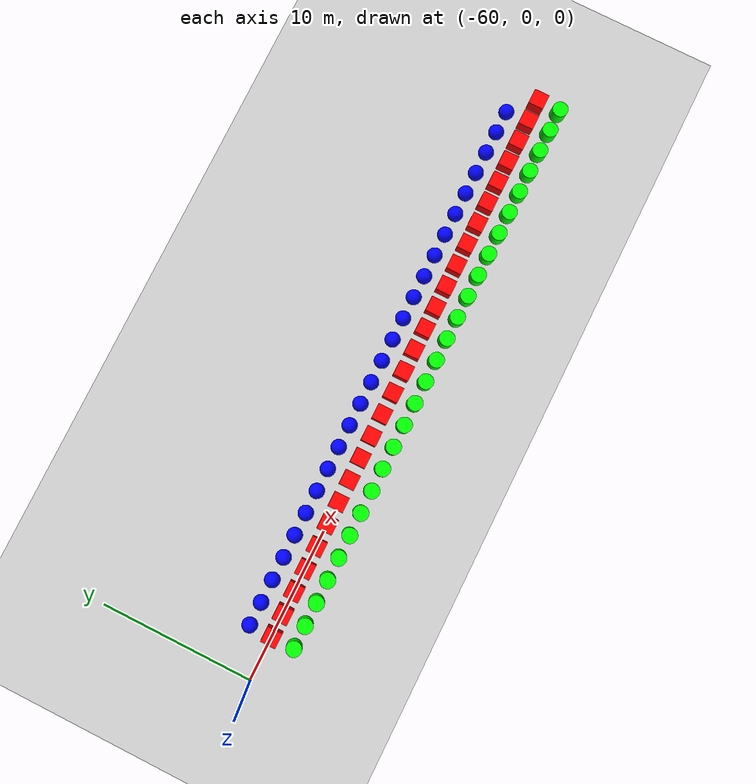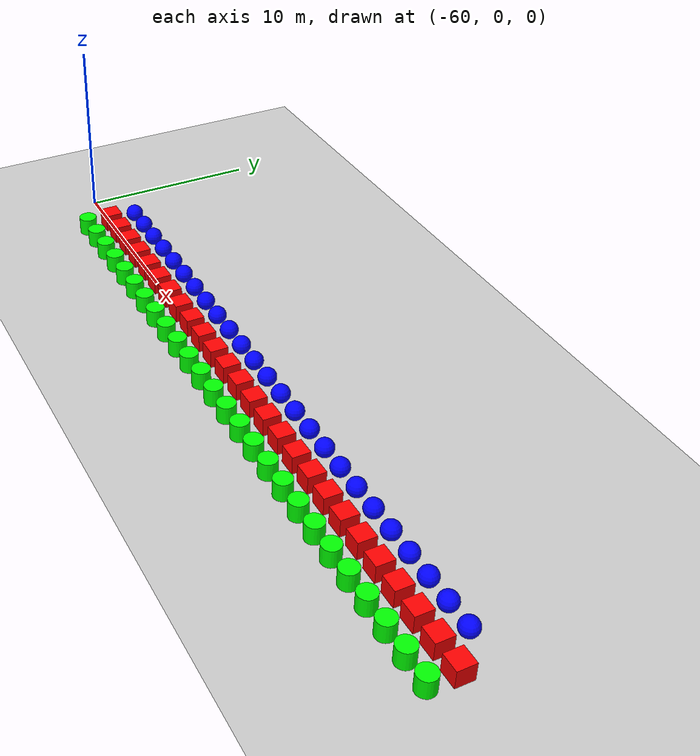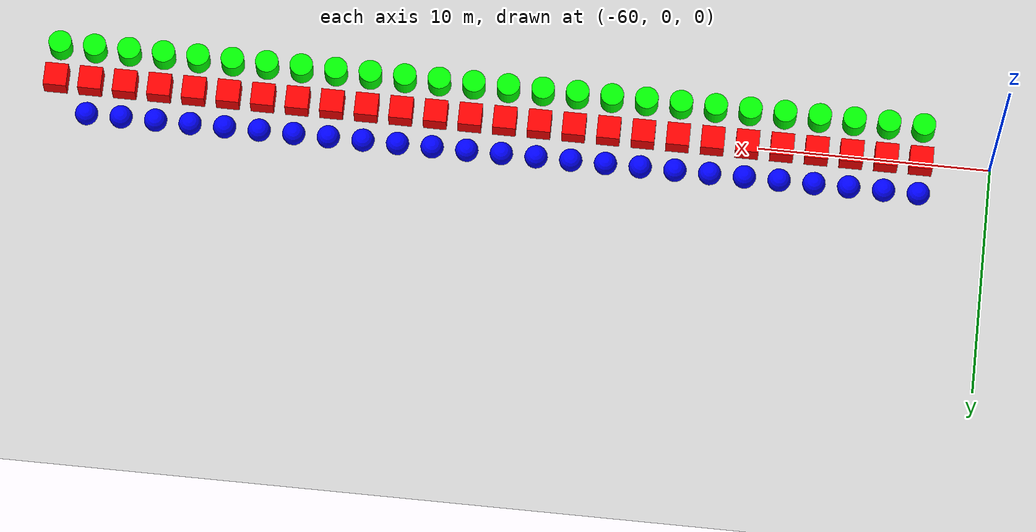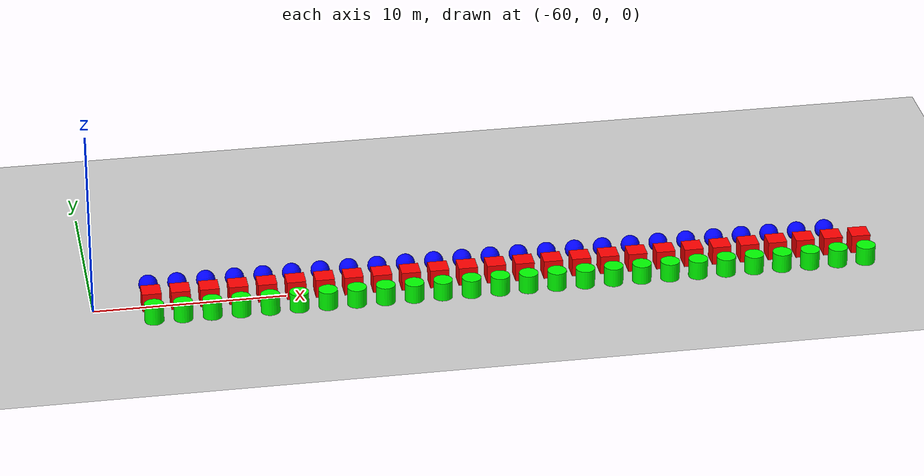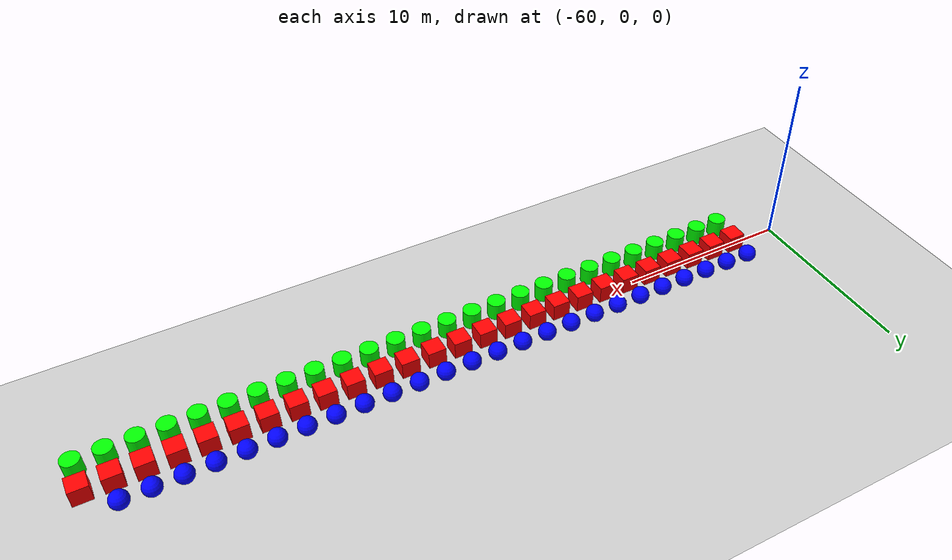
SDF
<sdf version="1.6">
 <world name="shapes">
  <model name="ground_plane">
   <static>true</static>
   <link name="link">
    <collision name="collision">
     <geometry><plane><normal>0 0 1</normal><size>100 100</size></plane></geometry>
    </collision>
    <visual name="visual">
     <geometry><plane><normal>0 0 1</normal><size>100 100</size></plane></geometry>
     <material>
      <ambient>0.8 0.8 0.8 1</ambient>
      <diffuse>0.8 0.8 0.8 1</diffuse>
      <specular>0.8 0.8 0.8 1</specular>
     </material>
    </visual>
   </link>
  </model>
  <model name="box_462">
   <static>false</static>
   <pose>-57.0 0 0.5 0 0 0</pose>
   <link name="box_link">
    <inertial>
     <inertia><ixx>1</ixx><ixy>0</ixy><ixz>0</ixz><iyy>1</iyy><iyz>0</iyz><izz>1</izz></inertia>
     <mass>1.0</mass>
    </inertial>
    <collision name="box_collision"><geometry><box><size>1 1 1</size></box></geometry></collision>
    <visual name="box_visual">
     <geometry><box><size>1 1 1</size></box></geometry>
     <material><ambient>1 0 0 1</ambient><diffuse>1 0 0 1</diffuse><specular>1 0 0 1</specular></material>
    </visual>
   </link>
  </model>
  <model name="cylinder_462">
   <static>false</static>
   <pose>-57.0 -1.5 0.5 0 0 0</pose>
   <link name="cylinder_link">
    <inertial>
     <inertia><ixx>2</ixx><ixy>0</ixy><ixz>0</ixz><iyy>2</iyy><iyz>0</iyz><izz>2</izz></inertia>
     <mass>2.0</mass>
    </inertial>
    <collision name="cylinder_collision">
     <geometry><cylinder><radius>0.5</radius><length>1.0</length></cylinder></geometry>
    </collision>
    <visual name="cylinder_visual">
     <geometry><cylinder><radius>0.5</radius><length>1.0</length></cylinder></geometry>
     <material><ambient>0 1 0 1</ambient><diffuse>0 1 0 1</diffuse><specular>0 1 0 1</specular></material>
    </visual>
   </link>
  </model>
  <model name="sphere_462">
   <static>false</static>
   <pose>-57.0 1.5 0.5 0 0 0</pose>
   <link name="sphere_link">
    <inertial>
     <inertia><ixx>3</ixx><ixy>0</ixy><ixz>0</ixz><iyy>3</iyy><iyz>0</iyz><izz>3</izz></inertia>
     <mass>3.0</mass>
    </inertial>
    <collision name="sphere_collision"><geometry><sphere><radius>0.5</radius></sphere></geometry></collision>
    <visual name="sphere_visual">
     <geometry><sphere><radius>0.5</radius></sphere></geometry>
     <material><ambient>0 0 1 1</ambient><diffuse>0 0 1 1</diffuse><specular>0 0 1 1</specular></material>
    </visual>
   </link>
  </model>
  <model name="box_463">
   <static>false</static>
   <pose>-55.5 0 0.5 0 0 0</pose>
   <link name="box_link">
    <inertial>
     <inertia><ixx>1</ixx><ixy>0</ixy><ixz>0</ixz><iyy>1</iyy><iyz>0</iyz><izz>1</izz></inertia>
     <mass>1.0</mass>
    </inertial>
    <collision name="box_collision"><geometry><box><size>1 1 1</size></box></geometry></collision>
    <visual name="box_visual">
     <geometry><box><size>1 1 1</size></box></geometry>
     <material><ambient>1 0 0 1</ambient><diffuse>1 0 0 1</diffuse><specular>1 0 0 1</specular></material>
    </visual>
   </link>
  </model>
  <model name="cylinder_463">
   <static>false</static>
   <pose>-55.5 -1.5 0.5 0 0 0</pose>
   <link name="cylinder_link">
    <inertial>
     <inertia><ixx>2</ixx><ixy>0</ixy><ixz>0</ixz><iyy>2</iyy><iyz>0</iyz><izz>2</izz></inertia>
     <mass>2.0</mass>
    </inertial>
    <collision name="cylinder_collision">
     <geometry><cylinder><radius>0.5</radius><length>1.0</length></cylinder></geometry>
    </collision>
    <visual name="cylinder_visual">
     <geometry><cylinder><radius>0.5</radius><length>1.0</length></cylinder></geometry>
     <material><ambient>0 1 0 1</ambient><diffuse>0 1 0 1</diffuse><specular>0 1 0 1</specular></material>
    </visual>
   </link>
  </model>
  <model name="sphere_463">
   <static>false</static>
   <pose>-55.5 1.5 0.5 0 0 0</pose>
   <link name="sphere_link">
    <inertial>
     <inertia><ixx>3</ixx><ixy>0</ixy><ixz>0</ixz><iyy>3</iyy><iyz>0</iyz><izz>3</izz></inertia>
     <mass>3.0</mass>
    </inertial>
    <collision name="sphere_collision"><geometry><sphere><radius>0.5</radius></sphere></geometry></collision>
    <visual name="sphere_visual">
     <geometry><sphere><radius>0.5</radius></sphere></geometry>
     <material><ambient>0 0 1 1</ambient><diffuse>0 0 1 1</diffuse><specular>0 0 1 1</specular></material>
    </visual>
   </link>
  </model>
  <model name="box_464">
   <static>false</static>
   <pose>-54.0 0 0.5 0 0 0</pose>
   <link name="box_link">
    <inertial>
     <inertia><ixx>1</ixx><ixy>0</ixy><ixz>0</ixz><iyy>1</iyy><iyz>0</iyz><izz>1</izz></inertia>
     <mass>1.0</mass>
    </inertial>
    <collision name="box_collision"><geometry><box><size>1 1 1</size></box></geometry></collision>
    <visual name="box_visual">
     <geometry><box><size>1 1 1</size></box></geometry>
     <material><ambient>1 0 0 1</ambient><diffuse>1 0 0 1</diffuse><specular>1 0 0 1</specular></material>
    </visual>
   </link>
  </model>
  <model name="cylinder_464">
   <static>false</static>
   <pose>-54.0 -1.5 0.5 0 0 0</pose>
   <link name="cylinder_link">
    <inertial>
     <inertia><ixx>2</ixx><ixy>0</ixy><ixz>0</ixz><iyy>2</iyy><iyz>0</iyz><izz>2</izz></inertia>
     <mass>2.0</mass>
    </inertial>
    <collision name="cylinder_collision">
     <geometry><cylinder><radius>0.5</radius><length>1.0</length></cylinder></geometry>
    </collision>
    <visual name="cylinder_visual">
     <geometry><cylinder><radius>0.5</radius><length>1.0</length></cylinder></geometry>
     <material><ambient>0 1 0 1</ambient><diffuse>0 1 0 1</diffuse><specular>0 1 0 1</specular></material>
    </visual>
   </link>
  </model>
  <model name="sphere_464">
   <static>false</static>
   <pose>-54.0 1.5 0.5 0 0 0</pose>
   <link name="sphere_link">
    <inertial>
     <inertia><ixx>3</ixx><ixy>0</ixy><ixz>0</ixz><iyy>3</iyy><iyz>0</iyz><izz>3</izz></inertia>
     <mass>3.0</mass>
    </inertial>
    <collision name="sphere_collision"><geometry><sphere><radius>0.5</radius></sphere></geometry></collision>
    <visual name="sphere_visual">
     <geometry><sphere><radius>0.5</radius></sphere></geometry>
     <material><ambient>0 0 1 1</ambient><diffuse>0 0 1 1</diffuse><specular>0 0 1 1</specular></material>
    </visual>
   </link>
  </model>
  <model name="box_465">
   <static>false</static>
   <pose>-52.5 0 0.5 0 0 0</pose>
   <link name="box_link">
    <inertial>
     <inertia><ixx>1</ixx><ixy>0</ixy><ixz>0</ixz><iyy>1</iyy><iyz>0</iyz><izz>1</izz></inertia>
     <mass>1.0</mass>
    </inertial>
    <collision name="box_collision"><geometry><box><size>1 1 1</size></box></geometry></collision>
    <visual name="box_visual">
     <geometry><box><size>1 1 1</size></box></geometry>
     <material><ambient>1 0 0 1</ambient><diffuse>1 0 0 1</diffuse><specular>1 0 0 1</specular></material>
    </visual>
   </link>
  </model>
  <model name="cylinder_465">
   <static>false</static>
   <pose>-52.5 -1.5 0.5 0 0 0</pose>
   <link name="cylinder_link">
    <inertial>
     <inertia><ixx>2</ixx><ixy>0</ixy><ixz>0</ixz><iyy>2</iyy><iyz>0</iyz><izz>2</izz></inertia>
     <mass>2.0</mass>
    </inertial>
    <collision name="cylinder_collision">
     <geometry><cylinder><radius>0.5</radius><length>1.0</length></cylinder></geometry>
    </collision>
    <visual name="cylinder_visual">
     <geometry><cylinder><radius>0.5</radius><length>1.0</length></cylinder></geometry>
     <material><ambient>0 1 0 1</ambient><diffuse>0 1 0 1</diffuse><specular>0 1 0 1</specular></material>
    </visual>
   </link>
  </model>
  <model name="sphere_465">
   <static>false</static>
   <pose>-52.5 1.5 0.5 0 0 0</pose>
   <link name="sphere_link">
    <inertial>
     <inertia><ixx>3</ixx><ixy>0</ixy><ixz>0</ixz><iyy>3</iyy><iyz>0</iyz><izz>3</izz></inertia>
     <mass>3.0</mass>
    </inertial>
    <collision name="sphere_collision"><geometry><sphere><radius>0.5</radius></sphere></geometry></collision>
    <visual name="sphere_visual">
     <geometry><sphere><radius>0.5</radius></sphere></geometry>
     <material><ambient>0 0 1 1</ambient><diffuse>0 0 1 1</diffuse><specular>0 0 1 1</specular></material>
    </visual>
   </link>
  </model>
  <model name="box_466">
   <static>false</static>
   <pose>-51.0 0 0.5 0 0 0</pose>
   <link name="box_link">
    <inertial>
     <inertia><ixx>1</ixx><ixy>0</ixy><ixz>0</ixz><iyy>1</iyy><iyz>0</iyz><izz>1</izz></inertia>
     <mass>1.0</mass>
    </inertial>
    <collision name="box_collision"><geometry><box><size>1 1 1</size></box></geometry></collision>
    <visual name="box_visual">
     <geometry><box><size>1 1 1</size></box></geometry>
     <material><ambient>1 0 0 1</ambient><diffuse>1 0 0 1</diffuse><specular>1 0 0 1</specular></material>
    </visual>
   </link>
  </model>
  <model name="cylinder_466">
   <static>false</static>
   <pose>-51.0 -1.5 0.5 0 0 0</pose>
   <link name="cylinder_link">
    <inertial>
     <inertia><ixx>2</ixx><ixy>0</ixy><ixz>0</ixz><iyy>2</iyy><iyz>0</iyz><izz>2</izz></inertia>
     <mass>2.0</mass>
    </inertial>
    <collision name="cylinder_collision">
     <geometry><cylinder><radius>0.5</radius><length>1.0</length></cylinder></geometry>
    </collision>
    <visual name="cylinder_visual">
     <geometry><cylinder><radius>0.5</radius><length>1.0</length></cylinder></geometry>
     <material><ambient>0 1 0 1</ambient><diffuse>0 1 0 1</diffuse><specular>0 1 0 1</specular></material>
    </visual>
   </link>
  </model>
  <model name="sphere_466">
   <static>false</static>
   <pose>-51.0 1.5 0.5 0 0 0</pose>
   <link name="sphere_link">
    <inertial>
     <inertia><ixx>3</ixx><ixy>0</ixy><ixz>0</ixz><iyy>3</iyy><iyz>0</iyz><izz>3</izz></inertia>
     <mass>3.0</mass>
    </inertial>
    <collision name="sphere_collision"><geometry><sphere><radius>0.5</radius></sphere></geometry></collision>
    <visual name="sphere_visual">
     <geometry><sphere><radius>0.5</radius></sphere></geometry>
     <material><ambient>0 0 1 1</ambient><diffuse>0 0 1 1</diffuse><specular>0 0 1 1</specular></material>
    </visual>
   </link>
  </model>
  <model name="box_467">
   <static>false</static>
   <pose>-49.5 0 0.5 0 0 0</pose>
   <link name="box_link">
    <inertial>
     <inertia><ixx>1</ixx><ixy>0</ixy><ixz>0</ixz><iyy>1</iyy><iyz>0</iyz><izz>1</izz></inertia>
     <mass>1.0</mass>
    </inertial>
    <collision name="box_collision"><geometry><box><size>1 1 1</size></box></geometry></collision>
    <visual name="box_visual">
     <geometry><box><size>1 1 1</size></box></geometry>
     <material><ambient>1 0 0 1</ambient><diffuse>1 0 0 1</diffuse><specular>1 0 0 1</specular></material>
    </visual>
   </link>
  </model>
  <model name="cylinder_467">
   <static>false</static>
   <pose>-49.5 -1.5 0.5 0 0 0</pose>
   <link name="cylinder_link">
    <inertial>
     <inertia><ixx>2</ixx><ixy>0</ixy><ixz>0</ixz><iyy>2</iyy><iyz>0</iyz><izz>2</izz></inertia>
     <mass>2.0</mass>
    </inertial>
    <collision name="cylinder_collision">
     <geometry><cylinder><radius>0.5</radius><length>1.0</length></cylinder></geometry>
    </collision>
    <visual name="cylinder_visual">
     <geometry><cylinder><radius>0.5</radius><length>1.0</length></cylinder></geometry>
     <material><ambient>0 1 0 1</ambient><diffuse>0 1 0 1</diffuse><specular>0 1 0 1</specular></material>
    </visual>
   </link>
  </model>
  <model name="sphere_467">
   <static>false</static>
   <pose>-49.5 1.5 0.5 0 0 0</pose>
   <link name="sphere_link">
    <inertial>
     <inertia><ixx>3</ixx><ixy>0</ixy><ixz>0</ixz><iyy>3</iyy><iyz>0</iyz><izz>3</izz></inertia>
     <mass>3.0</mass>
    </inertial>
    <collision name="sphere_collision"><geometry><sphere><radius>0.5</radius></sphere></geometry></collision>
    <visual name="sphere_visual">
     <geometry><sphere><radius>0.5</radius></sphere></geometry>
     <material><ambient>0 0 1 1</ambient><diffuse>0 0 1 1</diffuse><specular>0 0 1 1</specular></material>
    </visual>
   </link>
  </model>
  <model name="box_468">
   <static>false</static>
   <pose>-48.0 0 0.5 0 0 0</pose>
   <link name="box_link">
    <inertial>
     <inertia><ixx>1</ixx><ixy>0</ixy><ixz>0</ixz><iyy>1</iyy><iyz>0</iyz><izz>1</izz></inertia>
     <mass>1.0</mass>
    </inertial>
    <collision name="box_collision"><geometry><box><size>1 1 1</size></box></geometry></collision>
    <visual name="box_visual">
     <geometry><box><size>1 1 1</size></box></geometry>
     <material><ambient>1 0 0 1</ambient><diffuse>1 0 0 1</diffuse><specular>1 0 0 1</specular></material>
    </visual>
   </link>
  </model>
  <model name="cylinder_468">
   <static>false</static>
   <pose>-48.0 -1.5 0.5 0 0 0</pose>
   <link name="cylinder_link">
    <inertial>
     <inertia><ixx>2</ixx><ixy>0</ixy><ixz>0</ixz><iyy>2</iyy><iyz>0</iyz><izz>2</izz></inertia>
     <mass>2.0</mass>
    </inertial>
    <collision name="cylinder_collision">
     <geometry><cylinder><radius>0.5</radius><length>1.0</length></cylinder></geometry>
    </collision>
    <visual name="cylinder_visual">
     <geometry><cylinder><radius>0.5</radius><length>1.0</length></cylinder></geometry>
     <material><ambient>0 1 0 1</ambient><diffuse>0 1 0 1</diffuse><specular>0 1 0 1</specular></material>
    </visual>
   </link>
  </model>
  <model name="sphere_468">
   <static>false</static>
   <pose>-48.0 1.5 0.5 0 0 0</pose>
   <link name="sphere_link">
    <inertial>
     <inertia><ixx>3</ixx><ixy>0</ixy><ixz>0</ixz><iyy>3</iyy><iyz>0</iyz><izz>3</izz></inertia>
     <mass>3.0</mass>
    </inertial>
    <collision name="sphere_collision"><geometry><sphere><radius>0.5</radius></sphere></geometry></collision>
    <visual name="sphere_visual">
     <geometry><sphere><radius>0.5</radius></sphere></geometry>
     <material><ambient>0 0 1 1</ambient><diffuse>0 0 1 1</diffuse><specular>0 0 1 1</specular></material>
    </visual>
   </link>
  </model>
  <model name="box_469">
   <static>false</static>
   <pose>-46.5 0 0.5 0 0 0</pose>
   <link name="box_link">
    <inertial>
     <inertia><ixx>1</ixx><ixy>0</ixy><ixz>0</ixz><iyy>1</iyy><iyz>0</iyz><izz>1</izz></inertia>
     <mass>1.0</mass>
    </inertial>
    <collision name="box_collision"><geometry><box><size>1 1 1</size></box></geometry></collision>
    <visual name="box_visual">
     <geometry><box><size>1 1 1</size></box></geometry>
     <material><ambient>1 0 0 1</ambient><diffuse>1 0 0 1</diffuse><specular>1 0 0 1</specular></material>
    </visual>
   </link>
  </model>
  <model name="cylinder_469">
   <static>false</static>
   <pose>-46.5 -1.5 0.5 0 0 0</pose>
   <link name="cylinder_link">
    <inertial>
     <inertia><ixx>2</ixx><ixy>0</ixy><ixz>0</ixz><iyy>2</iyy><iyz>0</iyz><izz>2</izz></inertia>
     <mass>2.0</mass>
    </inertial>
    <collision name="cylinder_collision">
     <geometry><cylinder><radius>0.5</radius><length>1.0</length></cylinder></geometry>
    </collision>
    <visual name="cylinder_visual">
     <geometry><cylinder><radius>0.5</radius><length>1.0</length></cylinder></geometry>
     <material><ambient>0 1 0 1</ambient><diffuse>0 1 0 1</diffuse><specular>0 1 0 1</specular></material>
    </visual>
   </link>
  </model>
  <model name="sphere_469">
   <static>false</static>
   <pose>-46.5 1.5 0.5 0 0 0</pose>
   <link name="sphere_link">
    <inertial>
     <inertia><ixx>3</ixx><ixy>0</ixy><ixz>0</ixz><iyy>3</iyy><iyz>0</iyz><izz>3</izz></inertia>
     <mass>3.0</mass>
    </inertial>
    <collision name="sphere_collision"><geometry><sphere><radius>0.5</radius></sphere></geometry></collision>
    <visual name="sphere_visual">
     <geometry><sphere><radius>0.5</radius></sphere></geometry>
     <material><ambient>0 0 1 1</ambient><diffuse>0 0 1 1</diffuse><specular>0 0 1 1</specular></material>
    </visual>
   </link>
  </model>
  <model name="box_470">
   <static>false</static>
   <pose>-45.0 0 0.5 0 0 0</pose>
   <link name="box_link">
    <inertial>
     <inertia><ixx>1</ixx><ixy>0</ixy><ixz>0</ixz><iyy>1</iyy><iyz>0</iyz><izz>1</izz></inertia>
     <mass>1.0</mass>
    </inertial>
    <collision name="box_collision"><geometry><box><size>1 1 1</size></box></geometry></collision>
    <visual name="box_visual">
     <geometry><box><size>1 1 1</size></box></geometry>
     <material><ambient>1 0 0 1</ambient><diffuse>1 0 0 1</diffuse><specular>1 0 0 1</specular></material>
    </visual>
   </link>
  </model>
  <model name="cylinder_470">
   <static>false</static>
   <pose>-45.0 -1.5 0.5 0 0 0</pose>
   <link name="cylinder_link">
    <inertial>
     <inertia><ixx>2</ixx><ixy>0</ixy><ixz>0</ixz><iyy>2</iyy><iyz>0</iyz><izz>2</izz></inertia>
     <mass>2.0</mass>
    </inertial>
    <collision name="cylinder_collision">
     <geometry><cylinder><radius>0.5</radius><length>1.0</length></cylinder></geometry>
    </collision>
    <visual name="cylinder_visual">
     <geometry><cylinder><radius>0.5</radius><length>1.0</length></cylinder></geometry>
     <material><ambient>0 1 0 1</ambient><diffuse>0 1 0 1</diffuse><specular>0 1 0 1</specular></material>
    </visual>
   </link>
  </model>
  <model name="sphere_470">
   <static>false</static>
   <pose>-45.0 1.5 0.5 0 0 0</pose>
   <link name="sphere_link">
    <inertial>
     <inertia><ixx>3</ixx><ixy>0</ixy><ixz>0</ixz><iyy>3</iyy><iyz>0</iyz><izz>3</izz></inertia>
     <mass>3.0</mass>
    </inertial>
    <collision name="sphere_collision"><geometry><sphere><radius>0.5</radius></sphere></geometry></collision>
    <visual name="sphere_visual">
     <geometry><sphere><radius>0.5</radius></sphere></geometry>
     <material><ambient>0 0 1 1</ambient><diffuse>0 0 1 1</diffuse><specular>0 0 1 1</specular></material>
    </visual>
   </link>
  </model>
  <model name="box_471">
   <static>false</static>
   <pose>-43.5 0 0.5 0 0 0</pose>
   <link name="box_link">
    <inertial>
     <inertia><ixx>1</ixx><ixy>0</ixy><ixz>0</ixz><iyy>1</iyy><iyz>0</iyz><izz>1</izz></inertia>
     <mass>1.0</mass>
    </inertial>
    <collision name="box_collision"><geometry><box><size>1 1 1</size></box></geometry></collision>
    <visual name="box_visual">
     <geometry><box><size>1 1 1</size></box></geometry>
     <material><ambient>1 0 0 1</ambient><diffuse>1 0 0 1</diffuse><specular>1 0 0 1</specular></material>
    </visual>
   </link>
  </model>
  <model name="cylinder_471">
   <static>false</static>
   <pose>-43.5 -1.5 0.5 0 0 0</pose>
   <link name="cylinder_link">
    <inertial>
     <inertia><ixx>2</ixx><ixy>0</ixy><ixz>0</ixz><iyy>2</iyy><iyz>0</iyz><izz>2</izz></inertia>
     <mass>2.0</mass>
    </inertial>
    <collision name="cylinder_collision">
     <geometry><cylinder><radius>0.5</radius><length>1.0</length></cylinder></geometry>
    </collision>
    <visual name="cylinder_visual">
     <geometry><cylinder><radius>0.5</radius><length>1.0</length></cylinder></geometry>
     <material><ambient>0 1 0 1</ambient><diffuse>0 1 0 1</diffuse><specular>0 1 0 1</specular></material>
    </visual>
   </link>
  </model>
  <model name="sphere_471">
   <static>false</static>
   <pose>-43.5 1.5 0.5 0 0 0</pose>
   <link name="sphere_link">
    <inertial>
     <inertia><ixx>3</ixx><ixy>0</ixy><ixz>0</ixz><iyy>3</iyy><iyz>0</iyz><izz>3</izz></inertia>
     <mass>3.0</mass>
    </inertial>
    <collision name="sphere_collision"><geometry><sphere><radius>0.5</radius></sphere></geometry></collision>
    <visual name="sphere_visual">
     <geometry><sphere><radius>0.5</radius></sphere></geometry>
     <material><ambient>0 0 1 1</ambient><diffuse>0 0 1 1</diffuse><specular>0 0 1 1</specular></material>
    </visual>
   </link>
  </model>
  <model name="box_472">
   <static>false</static>
   <pose>-42.0 0 0.5 0 0 0</pose>
   <link name="box_link">
    <inertial>
     <inertia><ixx>1</ixx><ixy>0</ixy><ixz>0</ixz><iyy>1</iyy><iyz>0</iyz><izz>1</izz></inertia>
     <mass>1.0</mass>
    </inertial>
    <collision name="box_collision"><geometry><box><size>1 1 1</size></box></geometry></collision>
    <visual name="box_visual">
     <geometry><box><size>1 1 1</size></box></geometry>
     <material><ambient>1 0 0 1</ambient><diffuse>1 0 0 1</diffuse><specular>1 0 0 1</specular></material>
    </visual>
   </link>
  </model>
  <model name="cylinder_472">
   <static>false</static>
   <pose>-42.0 -1.5 0.5 0 0 0</pose>
   <link name="cylinder_link">
    <inertial>
     <inertia><ixx>2</ixx><ixy>0</ixy><ixz>0</ixz><iyy>2</iyy><iyz>0</iyz><izz>2</izz></inertia>
     <mass>2.0</mass>
    </inertial>
    <collision name="cylinder_collision">
     <geometry><cylinder><radius>0.5</radius><length>1.0</length></cylinder></geometry>
    </collision>
    <visual name="cylinder_visual">
     <geometry><cylinder><radius>0.5</radius><length>1.0</length></cylinder></geometry>
     <material><ambient>0 1 0 1</ambient><diffuse>0 1 0 1</diffuse><specular>0 1 0 1</specular></material>
    </visual>
   </link>
  </model>
  <model name="sphere_472">
   <static>false</static>
   <pose>-42.0 1.5 0.5 0 0 0</pose>
   <link name="sphere_link">
    <inertial>
     <inertia><ixx>3</ixx><ixy>0</ixy><ixz>0</ixz><iyy>3</iyy><iyz>0</iyz><izz>3</izz></inertia>
     <mass>3.0</mass>
    </inertial>
    <collision name="sphere_collision"><geometry><sphere><radius>0.5</radius></sphere></geometry></collision>
    <visual name="sphere_visual">
     <geometry><sphere><radius>0.5</radius></sphere></geometry>
     <material><ambient>0 0 1 1</ambient><diffuse>0 0 1 1</diffuse><specular>0 0 1 1</specular></material>
    </visual>
   </link>
  </model>
  <model name="box_473">
   <static>false</static>
   <pose>-40.5 0 0.5 0 0 0</pose>
   <link name="box_link">
    <inertial>
     <inertia><ixx>1</ixx><ixy>0</ixy><ixz>0</ixz><iyy>1</iyy><iyz>0</iyz><izz>1</izz></inertia>
     <mass>1.0</mass>
    </inertial>
    <collision name="box_collision"><geometry><box><size>1 1 1</size></box></geometry></collision>
    <visual name="box_visual">
     <geometry><box><size>1 1 1</size></box></geometry>
     <material><ambient>1 0 0 1</ambient><diffuse>1 0 0 1</diffuse><specular>1 0 0 1</specular></material>
    </visual>
   </link>
  </model>
  <model name="cylinder_473">
   <static>false</static>
   <pose>-40.5 -1.5 0.5 0 0 0</pose>
   <link name="cylinder_link">
    <inertial>
     <inertia><ixx>2</ixx><ixy>0</ixy><ixz>0</ixz><iyy>2</iyy><iyz>0</iyz><izz>2</izz></inertia>
     <mass>2.0</mass>
    </inertial>
    <collision name="cylinder_collision">
     <geometry><cylinder><radius>0.5</radius><length>1.0</length></cylinder></geometry>
    </collision>
    <visual name="cylinder_visual">
     <geometry><cylinder><radius>0.5</radius><length>1.0</length></cylinder></geometry>
     <material><ambient>0 1 0 1</ambient><diffuse>0 1 0 1</diffuse><specular>0 1 0 1</specular></material>
    </visual>
   </link>
  </model>
  <model name="sphere_473">
   <static>false</static>
   <pose>-40.5 1.5 0.5 0 0 0</pose>
   <link name="sphere_link">
    <inertial>
     <inertia><ixx>3</ixx><ixy>0</ixy><ixz>0</ixz><iyy>3</iyy><iyz>0</iyz><izz>3</izz></inertia>
     <mass>3.0</mass>
    </inertial>
    <collision name="sphere_collision"><geometry><sphere><radius>0.5</radius></sphere></geometry></collision>
    <visual name="sphere_visual">
     <geometry><sphere><radius>0.5</radius></sphere></geometry>
     <material><ambient>0 0 1 1</ambient><diffuse>0 0 1 1</diffuse><specular>0 0 1 1</specular></material>
    </visual>
   </link>
  </model>
  <model name="box_474">
   <static>false</static>
   <pose>-39.0 0 0.5 0 0 0</pose>
   <link name="box_link">
    <inertial>
     <inertia><ixx>1</ixx><ixy>0</ixy><ixz>0</ixz><iyy>1</iyy><iyz>0</iyz><izz>1</izz></inertia>
     <mass>1.0</mass>
    </inertial>
    <collision name="box_collision"><geometry><box><size>1 1 1</size></box></geometry></collision>
    <visual name="box_visual">
     <geometry><box><size>1 1 1</size></box></geometry>
     <material><ambient>1 0 0 1</ambient><diffuse>1 0 0 1</diffuse><specular>1 0 0 1</specular></material>
    </visual>
   </link>
  </model>
  <model name="cylinder_474">
   <static>false</static>
   <pose>-39.0 -1.5 0.5 0 0 0</pose>
   <link name="cylinder_link">
    <inertial>
     <inertia><ixx>2</ixx><ixy>0</ixy><ixz>0</ixz><iyy>2</iyy><iyz>0</iyz><izz>2</izz></inertia>
     <mass>2.0</mass>
    </inertial>
    <collision name="cylinder_collision">
     <geometry><cylinder><radius>0.5</radius><length>1.0</length></cylinder></geometry>
    </collision>
    <visual name="cylinder_visual">
     <geometry><cylinder><radius>0.5</radius><length>1.0</length></cylinder></geometry>
     <material><ambient>0 1 0 1</ambient><diffuse>0 1 0 1</diffuse><specular>0 1 0 1</specular></material>
    </visual>
   </link>
  </model>
  <model name="sphere_474">
   <static>false</static>
   <pose>-39.0 1.5 0.5 0 0 0</pose>
   <link name="sphere_link">
    <inertial>
     <inertia><ixx>3</ixx><ixy>0</ixy><ixz>0</ixz><iyy>3</iyy><iyz>0</iyz><izz>3</izz></inertia>
     <mass>3.0</mass>
    </inertial>
    <collision name="sphere_collision"><geometry><sphere><radius>0.5</radius></sphere></geometry></collision>
    <visual name="sphere_visual">
     <geometry><sphere><radius>0.5</radius></sphere></geometry>
     <material><ambient>0 0 1 1</ambient><diffuse>0 0 1 1</diffuse><specular>0 0 1 1</specular></material>
    </visual>
   </link>
  </model>
  <model name="box_475">
   <static>false</static>
   <pose>-37.5 0 0.5 0 0 0</pose>
   <link name="box_link">
    <inertial>
     <inertia><ixx>1</ixx><ixy>0</ixy><ixz>0</ixz><iyy>1</iyy><iyz>0</iyz><izz>1</izz></inertia>
     <mass>1.0</mass>
    </inertial>
    <collision name="box_collision"><geometry><box><size>1 1 1</size></box></geometry></collision>
    <visual name="box_visual">
     <geometry><box><size>1 1 1</size></box></geometry>
     <material><ambient>1 0 0 1</ambient><diffuse>1 0 0 1</diffuse><specular>1 0 0 1</specular></material>
    </visual>
   </link>
  </model>
  <model name="cylinder_475">
   <static>false</static>
   <pose>-37.5 -1.5 0.5 0 0 0</pose>
   <link name="cylinder_link">
    <inertial>
     <inertia><ixx>2</ixx><ixy>0</ixy><ixz>0</ixz><iyy>2</iyy><iyz>0</iyz><izz>2</izz></inertia>
     <mass>2.0</mass>
    </inertial>
    <collision name="cylinder_collision">
     <geometry><cylinder><radius>0.5</radius><length>1.0</length></cylinder></geometry>
    </collision>
    <visual name="cylinder_visual">
     <geometry><cylinder><radius>0.5</radius><length>1.0</length></cylinder></geometry>
     <material><ambient>0 1 0 1</ambient><diffuse>0 1 0 1</diffuse><specular>0 1 0 1</specular></material>
    </visual>
   </link>
  </model>
  <model name="sphere_475">
   <static>false</static>
   <pose>-37.5 1.5 0.5 0 0 0</pose>
   <link name="sphere_link">
    <inertial>
     <inertia><ixx>3</ixx><ixy>0</ixy><ixz>0</ixz><iyy>3</iyy><iyz>0</iyz><izz>3</izz></inertia>
     <mass>3.0</mass>
    </inertial>
    <collision name="sphere_collision"><geometry><sphere><radius>0.5</radius></sphere></geometry></collision>
    <visual name="sphere_visual">
     <geometry><sphere><radius>0.5</radius></sphere></geometry>
     <material><ambient>0 0 1 1</ambient><diffuse>0 0 1 1</diffuse><specular>0 0 1 1</specular></material>
    </visual>
   </link>
  </model>
  <model name="box_476">
   <static>false</static>
   <pose>-36.0 0 0.5 0 0 0</pose>
   <link name="box_link">
    <inertial>
     <inertia><ixx>1</ixx><ixy>0</ixy><ixz>0</ixz><iyy>1</iyy><iyz>0</iyz><izz>1</izz></inertia>
     <mass>1.0</mass>
    </inertial>
    <collision name="box_collision"><geometry><box><size>1 1 1</size></box></geometry></collision>
    <visual name="box_visual">
     <geometry><box><size>1 1 1</size></box></geometry>
     <material><ambient>1 0 0 1</ambient><diffuse>1 0 0 1</diffuse><specular>1 0 0 1</specular></material>
    </visual>
   </link>
  </model>
  <model name="cylinder_476">
   <static>false</static>
   <pose>-36.0 -1.5 0.5 0 0 0</pose>
   <link name="cylinder_link">
    <inertial>
     <inertia><ixx>2</ixx><ixy>0</ixy><ixz>0</ixz><iyy>2</iyy><iyz>0</iyz><izz>2</izz></inertia>
     <mass>2.0</mass>
    </inertial>
    <collision name="cylinder_collision">
     <geometry><cylinder><radius>0.5</radius><length>1.0</length></cylinder></geometry>
    </collision>
    <visual name="cylinder_visual">
     <geometry><cylinder><radius>0.5</radius><length>1.0</length></cylinder></geometry>
     <material><ambient>0 1 0 1</ambient><diffuse>0 1 0 1</diffuse><specular>0 1 0 1</specular></material>
    </visual>
   </link>
  </model>
  <model name="sphere_476">
   <static>false</static>
   <pose>-36.0 1.5 0.5 0 0 0</pose>
   <link name="sphere_link">
    <inertial>
     <inertia><ixx>3</ixx><ixy>0</ixy><ixz>0</ixz><iyy>3</iyy><iyz>0</iyz><izz>3</izz></inertia>
     <mass>3.0</mass>
    </inertial>
    <collision name="sphere_collision"><geometry><sphere><radius>0.5</radius></sphere></geometry></collision>
    <visual name="sphere_visual">
     <geometry><sphere><radius>0.5</radius></sphere></geometry>
     <material><ambient>0 0 1 1</ambient><diffuse>0 0 1 1</diffuse><specular>0 0 1 1</specular></material>
    </visual>
   </link>
  </model>
  <model name="box_477">
   <static>false</static>
   <pose>-34.5 0 0.5 0 0 0</pose>
   <link name="box_link">
    <inertial>
     <inertia><ixx>1</ixx><ixy>0</ixy><ixz>0</ixz><iyy>1</iyy><iyz>0</iyz><izz>1</izz></inertia>
     <mass>1.0</mass>
    </inertial>
    <collision name="box_collision"><geometry><box><size>1 1 1</size></box></geometry></collision>
    <visual name="box_visual">
     <geometry><box><size>1 1 1</size></box></geometry>
     <material><ambient>1 0 0 1</ambient><diffuse>1 0 0 1</diffuse><specular>1 0 0 1</specular></material>
    </visual>
   </link>
  </model>
  <model name="cylinder_477">
   <static>false</static>
   <pose>-34.5 -1.5 0.5 0 0 0</pose>
   <link name="cylinder_link">
    <inertial>
     <inertia><ixx>2</ixx><ixy>0</ixy><ixz>0</ixz><iyy>2</iyy><iyz>0</iyz><izz>2</izz></inertia>
     <mass>2.0</mass>
    </inertial>
    <collision name="cylinder_collision">
     <geometry><cylinder><radius>0.5</radius><length>1.0</length></cylinder></geometry>
    </collision>
    <visual name="cylinder_visual">
     <geometry><cylinder><radius>0.5</radius><length>1.0</length></cylinder></geometry>
     <material><ambient>0 1 0 1</ambient><diffuse>0 1 0 1</diffuse><specular>0 1 0 1</specular></material>
    </visual>
   </link>
  </model>
  <model name="sphere_477">
   <static>false</static>
   <pose>-34.5 1.5 0.5 0 0 0</pose>
   <link name="sphere_link">
    <inertial>
     <inertia><ixx>3</ixx><ixy>0</ixy><ixz>0</ixz><iyy>3</iyy><iyz>0</iyz><izz>3</izz></inertia>
     <mass>3.0</mass>
    </inertial>
    <collision name="sphere_collision"><geometry><sphere><radius>0.5</radius></sphere></geometry></collision>
    <visual name="sphere_visual">
     <geometry><sphere><radius>0.5</radius></sphere></geometry>
     <material><ambient>0 0 1 1</ambient><diffuse>0 0 1 1</diffuse><specular>0 0 1 1</specular></material>
    </visual>
   </link>
  </model>
  <model name="box_478">
   <static>false</static>
   <pose>-33.0 0 0.5 0 0 0</pose>
   <link name="box_link">
    <inertial>
     <inertia><ixx>1</ixx><ixy>0</ixy><ixz>0</ixz><iyy>1</iyy><iyz>0</iyz><izz>1</izz></inertia>
     <mass>1.0</mass>
    </inertial>
    <collision name="box_collision"><geometry><box><size>1 1 1</size></box></geometry></collision>
    <visual name="box_visual">
     <geometry><box><size>1 1 1</size></box></geometry>
     <material><ambient>1 0 0 1</ambient><diffuse>1 0 0 1</diffuse><specular>1 0 0 1</specular></material>
    </visual>
   </link>
  </model>
  <model name="cylinder_478">
   <static>false</static>
   <pose>-33.0 -1.5 0.5 0 0 0</pose>
   <link name="cylinder_link">
    <inertial>
     <inertia><ixx>2</ixx><ixy>0</ixy><ixz>0</ixz><iyy>2</iyy><iyz>0</iyz><izz>2</izz></inertia>
     <mass>2.0</mass>
    </inertial>
    <collision name="cylinder_collision">
     <geometry><cylinder><radius>0.5</radius><length>1.0</length></cylinder></geometry>
    </collision>
    <visual name="cylinder_visual">
     <geometry><cylinder><radius>0.5</radius><length>1.0</length></cylinder></geometry>
     <material><ambient>0 1 0 1</ambient><diffuse>0 1 0 1</diffuse><specular>0 1 0 1</specular></material>
    </visual>
   </link>
  </model>
  <model name="sphere_478">
   <static>false</static>
   <pose>-33.0 1.5 0.5 0 0 0</pose>
   <link name="sphere_link">
    <inertial>
     <inertia><ixx>3</ixx><ixy>0</ixy><ixz>0</ixz><iyy>3</iyy><iyz>0</iyz><izz>3</izz></inertia>
     <mass>3.0</mass>
    </inertial>
    <collision name="sphere_collision"><geometry><sphere><radius>0.5</radius></sphere></geometry></collision>
    <visual name="sphere_visual">
     <geometry><sphere><radius>0.5</radius></sphere></geometry>
     <material><ambient>0 0 1 1</ambient><diffuse>0 0 1 1</diffuse><specular>0 0 1 1</specular></material>
    </visual>
   </link>
  </model>
  <model name="box_479">
   <static>false</static>
   <pose>-31.5 0 0.5 0 0 0</pose>
   <link name="box_link">
    <inertial>
     <inertia><ixx>1</ixx><ixy>0</ixy><ixz>0</ixz><iyy>1</iyy><iyz>0</iyz><izz>1</izz></inertia>
     <mass>1.0</mass>
    </inertial>
    <collision name="box_collision"><geometry><box><size>1 1 1</size></box></geometry></collision>
    <visual name="box_visual">
     <geometry><box><size>1 1 1</size></box></geometry>
     <material><ambient>1 0 0 1</ambient><diffuse>1 0 0 1</diffuse><specular>1 0 0 1</specular></material>
    </visual>
   </link>
  </model>
  <model name="cylinder_479">
   <static>false</static>
   <pose>-31.5 -1.5 0.5 0 0 0</pose>
   <link name="cylinder_link">
    <inertial>
     <inertia><ixx>2</ixx><ixy>0</ixy><ixz>0</ixz><iyy>2</iyy><iyz>0</iyz><izz>2</izz></inertia>
     <mass>2.0</mass>
    </inertial>
    <collision name="cylinder_collision">
     <geometry><cylinder><radius>0.5</radius><length>1.0</length></cylinder></geometry>
    </collision>
    <visual name="cylinder_visual">
     <geometry><cylinder><radius>0.5</radius><length>1.0</length></cylinder></geometry>
     <material><ambient>0 1 0 1</ambient><diffuse>0 1 0 1</diffuse><specular>0 1 0 1</specular></material>
    </visual>
   </link>
  </model>
  <model name="sphere_479">
   <static>false</static>
   <pose>-31.5 1.5 0.5 0 0 0</pose>
   <link name="sphere_link">
    <inertial>
     <inertia><ixx>3</ixx><ixy>0</ixy><ixz>0</ixz><iyy>3</iyy><iyz>0</iyz><izz>3</izz></inertia>
     <mass>3.0</mass>
    </inertial>
    <collision name="sphere_collision"><geometry><sphere><radius>0.5</radius></sphere></geometry></collision>
    <visual name="sphere_visual">
     <geometry><sphere><radius>0.5</radius></sphere></geometry>
     <material><ambient>0 0 1 1</ambient><diffuse>0 0 1 1</diffuse><specular>0 0 1 1</specular></material>
    </visual>
   </link>
  </model>
  <model name="box_480">
   <static>false</static>
   <pose>-30.0 0 0.5 0 0 0</pose>
   <link name="box_link">
    <inertial>
     <inertia><ixx>1</ixx><ixy>0</ixy><ixz>0</ixz><iyy>1</iyy><iyz>0</iyz><izz>1</izz></inertia>
     <mass>1.0</mass>
    </inertial>
    <collision name="box_collision"><geometry><box><size>1 1 1</size></box></geometry></collision>
    <visual name="box_visual">
     <geometry><box><size>1 1 1</size></box></geometry>
     <material><ambient>1 0 0 1</ambient><diffuse>1 0 0 1</diffuse><specular>1 0 0 1</specular></material>
    </visual>
   </link>
  </model>
  <model name="cylinder_480">
   <static>false</static>
   <pose>-30.0 -1.5 0.5 0 0 0</pose>
   <link name="cylinder_link">
    <inertial>
     <inertia><ixx>2</ixx><ixy>0</ixy><ixz>0</ixz><iyy>2</iyy><iyz>0</iyz><izz>2</izz></inertia>
     <mass>2.0</mass>
    </inertial>
    <collision name="cylinder_collision">
     <geometry><cylinder><radius>0.5</radius><length>1.0</length></cylinder></geometry>
    </collision>
    <visual name="cylinder_visual">
     <geometry><cylinder><radius>0.5</radius><length>1.0</length></cylinder></geometry>
     <material><ambient>0 1 0 1</ambient><diffuse>0 1 0 1</diffuse><specular>0 1 0 1</specular></material>
    </visual>
   </link>
  </model>
  <model name="sphere_480">
   <static>false</static>
   <pose>-30.0 1.5 0.5 0 0 0</pose>
   <link name="sphere_link">
    <inertial>
     <inertia><ixx>3</ixx><ixy>0</ixy><ixz>0</ixz><iyy>3</iyy><iyz>0</iyz><izz>3</izz></inertia>
     <mass>3.0</mass>
    </inertial>
    <collision name="sphere_collision"><geometry><sphere><radius>0.5</radius></sphere></geometry></collision>
    <visual name="sphere_visual">
     <geometry><sphere><radius>0.5</radius></sphere></geometry>
     <material><ambient>0 0 1 1</ambient><diffuse>0 0 1 1</diffuse><specular>0 0 1 1</specular></material>
    </visual>
   </link>
  </model>
  <model name="box_481">
   <static>false</static>
   <pose>-28.5 0 0.5 0 0 0</pose>
   <link name="box_link">
    <inertial>
     <inertia><ixx>1</ixx><ixy>0</ixy><ixz>0</ixz><iyy>1</iyy><iyz>0</iyz><izz>1</izz></inertia>
     <mass>1.0</mass>
    </inertial>
    <collision name="box_collision"><geometry><box><size>1 1 1</size></box></geometry></collision>
    <visual name="box_visual">
     <geometry><box><size>1 1 1</size></box></geometry>
     <material><ambient>1 0 0 1</ambient><diffuse>1 0 0 1</diffuse><specular>1 0 0 1</specular></material>
    </visual>
   </link>
  </model>
  <model name="cylinder_481">
   <static>false</static>
   <pose>-28.5 -1.5 0.5 0 0 0</pose>
   <link name="cylinder_link">
    <inertial>
     <inertia><ixx>2</ixx><ixy>0</ixy><ixz>0</ixz><iyy>2</iyy><iyz>0</iyz><izz>2</izz></inertia>
     <mass>2.0</mass>
    </inertial>
    <collision name="cylinder_collision">
     <geometry><cylinder><radius>0.5</radius><length>1.0</length></cylinder></geometry>
    </collision>
    <visual name="cylinder_visual">
     <geometry><cylinder><radius>0.5</radius><length>1.0</length></cylinder></geometry>
     <material><ambient>0 1 0 1</ambient><diffuse>0 1 0 1</diffuse><specular>0 1 0 1</specular></material>
    </visual>
   </link>
  </model>
  <model name="sphere_481">
   <static>false</static>
   <pose>-28.5 1.5 0.5 0 0 0</pose>
   <link name="sphere_link">
    <inertial>
     <inertia><ixx>3</ixx><ixy>0</ixy><ixz>0</ixz><iyy>3</iyy><iyz>0</iyz><izz>3</izz></inertia>
     <mass>3.0</mass>
    </inertial>
    <collision name="sphere_collision"><geometry><sphere><radius>0.5</radius></sphere></geometry></collision>
    <visual name="sphere_visual">
     <geometry><sphere><radius>0.5</radius></sphere></geometry>
     <material><ambient>0 0 1 1</ambient><diffuse>0 0 1 1</diffuse><specular>0 0 1 1</specular></material>
    </visual>
   </link>
  </model>
  <model name="box_482">
   <static>false</static>
   <pose>-27.0 0 0.5 0 0 0</pose>
   <link name="box_link">
    <inertial>
     <inertia><ixx>1</ixx><ixy>0</ixy><ixz>0</ixz><iyy>1</iyy><iyz>0</iyz><izz>1</izz></inertia>
     <mass>1.0</mass>
    </inertial>
    <collision name="box_collision"><geometry><box><size>1 1 1</size></box></geometry></collision>
    <visual name="box_visual">
     <geometry><box><size>1 1 1</size></box></geometry>
     <material><ambient>1 0 0 1</ambient><diffuse>1 0 0 1</diffuse><specular>1 0 0 1</specular></material>
    </visual>
   </link>
  </model>
  <model name="cylinder_482">
   <static>false</static>
   <pose>-27.0 -1.5 0.5 0 0 0</pose>
   <link name="cylinder_link">
    <inertial>
     <inertia><ixx>2</ixx><ixy>0</ixy><ixz>0</ixz><iyy>2</iyy><iyz>0</iyz><izz>2</izz></inertia>
     <mass>2.0</mass>
    </inertial>
    <collision name="cylinder_collision">
     <geometry><cylinder><radius>0.5</radius><length>1.0</length></cylinder></geometry>
    </collision>
    <visual name="cylinder_visual">
     <geometry><cylinder><radius>0.5</radius><length>1.0</length></cylinder></geometry>
     <material><ambient>0 1 0 1</ambient><diffuse>0 1 0 1</diffuse><specular>0 1 0 1</specular></material>
    </visual>
   </link>
  </model>
  <model name="sphere_482">
   <static>false</static>
   <pose>-27.0 1.5 0.5 0 0 0</pose>
   <link name="sphere_link">
    <inertial>
     <inertia><ixx>3</ixx><ixy>0</ixy><ixz>0</ixz><iyy>3</iyy><iyz>0</iyz><izz>3</izz></inertia>
     <mass>3.0</mass>
    </inertial>
    <collision name="sphere_collision"><geometry><sphere><radius>0.5</radius></sphere></geometry></collision>
    <visual name="sphere_visual">
     <geometry><sphere><radius>0.5</radius></sphere></geometry>
     <material><ambient>0 0 1 1</ambient><diffuse>0 0 1 1</diffuse><specular>0 0 1 1</specular></material>
    </visual>
   </link>
  </model>
  <model name="box_483">
   <static>false</static>
   <pose>-25.5 0 0.5 0 0 0</pose>
   <link name="box_link">
    <inertial>
     <inertia><ixx>1</ixx><ixy>0</ixy><ixz>0</ixz><iyy>1</iyy><iyz>0</iyz><izz>1</izz></inertia>
     <mass>1.0</mass>
    </inertial>
    <collision name="box_collision"><geometry><box><size>1 1 1</size></box></geometry></collision>
    <visual name="box_visual">
     <geometry><box><size>1 1 1</size></box></geometry>
     <material><ambient>1 0 0 1</ambient><diffuse>1 0 0 1</diffuse><specular>1 0 0 1</specular></material>
    </visual>
   </link>
  </model>
  <model name="cylinder_483">
   <static>false</static>
   <pose>-25.5 -1.5 0.5 0 0 0</pose>
   <link name="cylinder_link">
    <inertial>
     <inertia><ixx>2</ixx><ixy>0</ixy><ixz>0</ixz><iyy>2</iyy><iyz>0</iyz><izz>2</izz></inertia>
     <mass>2.0</mass>
    </inertial>
    <collision name="cylinder_collision">
     <geometry><cylinder><radius>0.5</radius><length>1.0</length></cylinder></geometry>
    </collision>
    <visual name="cylinder_visual">
     <geometry><cylinder><radius>0.5</radius><length>1.0</length></cylinder></geometry>
     <material><ambient>0 1 0 1</ambient><diffuse>0 1 0 1</diffuse><specular>0 1 0 1</specular></material>
    </visual>
   </link>
  </model>
  <model name="sphere_483">
   <static>false</static>
   <pose>-25.5 1.5 0.5 0 0 0</pose>
   <link name="sphere_link">
    <inertial>
     <inertia><ixx>3</ixx><ixy>0</ixy><ixz>0</ixz><iyy>3</iyy><iyz>0</iyz><izz>3</izz></inertia>
     <mass>3.0</mass>
    </inertial>
    <collision name="sphere_collision"><geometry><sphere><radius>0.5</radius></sphere></geometry></collision>
    <visual name="sphere_visual">
     <geometry><sphere><radius>0.5</radius></sphere></geometry>
     <material><ambient>0 0 1 1</ambient><diffuse>0 0 1 1</diffuse><specular>0 0 1 1</specular></material>
    </visual>
   </link>
  </model>
  <model name="box_484">
   <static>false</static>
   <pose>-24.0 0 0.5 0 0 0</pose>
   <link name="box_link">
    <inertial>
     <inertia><ixx>1</ixx><ixy>0</ixy><ixz>0</ixz><iyy>1</iyy><iyz>0</iyz><izz>1</izz></inertia>
     <mass>1.0</mass>
    </inertial>
    <collision name="box_collision"><geometry><box><size>1 1 1</size></box></geometry></collision>
    <visual name="box_visual">
     <geometry><box><size>1 1 1</size></box></geometry>
     <material><ambient>1 0 0 1</ambient><diffuse>1 0 0 1</diffuse><specular>1 0 0 1</specular></material>
    </visual>
   </link>
  </model>
  <model name="cylinder_484">
   <static>false</static>
   <pose>-24.0 -1.5 0.5 0 0 0</pose>
   <link name="cylinder_link">
    <inertial>
     <inertia><ixx>2</ixx><ixy>0</ixy><ixz>0</ixz><iyy>2</iyy><iyz>0</iyz><izz>2</izz></inertia>
     <mass>2.0</mass>
    </inertial>
    <collision name="cylinder_collision">
     <geometry><cylinder><radius>0.5</radius><length>1.0</length></cylinder></geometry>
    </collision>
    <visual name="cylinder_visual">
     <geometry><cylinder><radius>0.5</radius><length>1.0</length></cylinder></geometry>
     <material><ambient>0 1 0 1</ambient><diffuse>0 1 0 1</diffuse><specular>0 1 0 1</specular></material>
    </visual>
   </link>
  </model>
  <model name="sphere_484">
   <static>false</static>
   <pose>-24.0 1.5 0.5 0 0 0</pose>
   <link name="sphere_link">
    <inertial>
     <inertia><ixx>3</ixx><ixy>0</ixy><ixz>0</ixz><iyy>3</iyy><iyz>0</iyz><izz>3</izz></inertia>
     <mass>3.0</mass>
    </inertial>
    <collision name="sphere_collision"><geometry><sphere><radius>0.5</radius></sphere></geometry></collision>
    <visual name="sphere_visual">
     <geometry><sphere><radius>0.5</radius></sphere></geometry>
     <material><ambient>0 0 1 1</ambient><diffuse>0 0 1 1</diffuse><specular>0 0 1 1</specular></material>
    </visual>
   </link>
  </model>
  <model name="box_485">
   <static>false</static>
   <pose>-22.5 0 0.5 0 0 0</pose>
   <link name="box_link">
    <inertial>
     <inertia><ixx>1</ixx><ixy>0</ixy><ixz>0</ixz><iyy>1</iyy><iyz>0</iyz><izz>1</izz></inertia>
     <mass>1.0</mass>
    </inertial>
    <collision name="box_collision"><geometry><box><size>1 1 1</size></box></geometry></collision>
    <visual name="box_visual">
     <geometry><box><size>1 1 1</size></box></geometry>
     <material><ambient>1 0 0 1</ambient><diffuse>1 0 0 1</diffuse><specular>1 0 0 1</specular></material>
    </visual>
   </link>
  </model>
  <model name="cylinder_485">
   <static>false</static>
   <pose>-22.5 -1.5 0.5 0 0 0</pose>
   <link name="cylinder_link">
    <inertial>
     <inertia><ixx>2</ixx><ixy>0</ixy><ixz>0</ixz><iyy>2</iyy><iyz>0</iyz><izz>2</izz></inertia>
     <mass>2.0</mass>
    </inertial>
    <collision name="cylinder_collision">
     <geometry><cylinder><radius>0.5</radius><length>1.0</length></cylinder></geometry>
    </collision>
    <visual name="cylinder_visual">
     <geometry><cylinder><radius>0.5</radius><length>1.0</length></cylinder></geometry>
     <material><ambient>0 1 0 1</ambient><diffuse>0 1 0 1</diffuse><specular>0 1 0 1</specular></material>
    </visual>
   </link>
  </model>
  <model name="sphere_485">
   <static>false</static>
   <pose>-22.5 1.5 0.5 0 0 0</pose>
   <link name="sphere_link">
    <inertial>
     <inertia><ixx>3</ixx><ixy>0</ixy><ixz>0</ixz><iyy>3</iyy><iyz>0</iyz><izz>3</izz></inertia>
     <mass>3.0</mass>
    </inertial>
    <collision name="sphere_collision"><geometry><sphere><radius>0.5</radius></sphere></geometry></collision>
    <visual name="sphere_visual">
     <geometry><sphere><radius>0.5</radius></sphere></geometry>
     <material><ambient>0 0 1 1</ambient><diffuse>0 0 1 1</diffuse><specular>0 0 1 1</specular></material>
    </visual>
   </link>
  </model>
  <model name="box_486">
   <static>false</static>
   <pose>-21.0 0 0.5 0 0 0</pose>
   <link name="box_link">
    <inertial>
     <inertia><ixx>1</ixx><ixy>0</ixy><ixz>0</ixz><iyy>1</iyy><iyz>0</iyz><izz>1</izz></inertia>
     <mass>1.0</mass>
    </inertial>
    <collision name="box_collision"><geometry><box><size>1 1 1</size></box></geometry></collision>
    <visual name="box_visual">
     <geometry><box><size>1 1 1</size></box></geometry>
     <material><ambient>1 0 0 1</ambient><diffuse>1 0 0 1</diffuse><specular>1 0 0 1</specular></material>
    </visual>
   </link>
  </model>
  <model name="cylinder_486">
   <static>false</static>
   <pose>-21.0 -1.5 0.5 0 0 0</pose>
   <link name="cylinder_link">
    <inertial>
     <inertia><ixx>2</ixx><ixy>0</ixy><ixz>0</ixz><iyy>2</iyy><iyz>0</iyz><izz>2</izz></inertia>
     <mass>2.0</mass>
    </inertial>
    <collision name="cylinder_collision">
     <geometry><cylinder><radius>0.5</radius><length>1.0</length></cylinder></geometry>
    </collision>
    <visual name="cylinder_visual">
     <geometry><cylinder><radius>0.5</radius><length>1.0</length></cylinder></geometry>
     <material><ambient>0 1 0 1</ambient><diffuse>0 1 0 1</diffuse><specular>0 1 0 1</specular></material>
    </visual>
   </link>
  </model>
  <model name="sphere_486">
   <static>false</static>
   <pose>-21.0 1.5 0.5 0 0 0</pose>
   <link name="sphere_link">
    <inertial>
     <inertia><ixx>3</ixx><ixy>0</ixy><ixz>0</ixz><iyy>3</iyy><iyz>0</iyz><izz>3</izz></inertia>
     <mass>3.0</mass>
    </inertial>
    <collision name="sphere_collision"><geometry><sphere><radius>0.5</radius></sphere></geometry></collision>
    <visual name="sphere_visual">
     <geometry><sphere><radius>0.5</radius></sphere></geometry>
     <material><ambient>0 0 1 1</ambient><diffuse>0 0 1 1</diffuse><specular>0 0 1 1</specular></material>
    </visual>
   </link>
  </model>
  <model name="box_487">
   <static>false</static>
   <pose>-19.5 0 0.5 0 0 0</pose>
   <link name="box_link">
    <inertial>
     <inertia><ixx>1</ixx><ixy>0</ixy><ixz>0</ixz><iyy>1</iyy><iyz>0</iyz><izz>1</izz></inertia>
     <mass>1.0</mass>
    </inertial>
    <collision name="box_collision"><geometry><box><size>1 1 1</size></box></geometry></collision>
    <visual name="box_visual">
     <geometry><box><size>1 1 1</size></box></geometry>
     <material><ambient>1 0 0 1</ambient><diffuse>1 0 0 1</diffuse><specular>1 0 0 1</specular></material>
    </visual>
   </link>
  </model>
  <model name="cylinder_487">
   <static>false</static>
   <pose>-19.5 -1.5 0.5 0 0 0</pose>
   <link name="cylinder_link">
    <inertial>
     <inertia><ixx>2</ixx><ixy>0</ixy><ixz>0</ixz><iyy>2</iyy><iyz>0</iyz><izz>2</izz></inertia>
     <mass>2.0</mass>
    </inertial>
    <collision name="cylinder_collision">
     <geometry><cylinder><radius>0.5</radius><length>1.0</length></cylinder></geometry>
    </collision>
    <visual name="cylinder_visual">
     <geometry><cylinder><radius>0.5</radius><length>1.0</length></cylinder></geometry>
     <material><ambient>0 1 0 1</ambient><diffuse>0 1 0 1</diffuse><specular>0 1 0 1</specular></material>
    </visual>
   </link>
  </model>
 </world>
</sdf>
